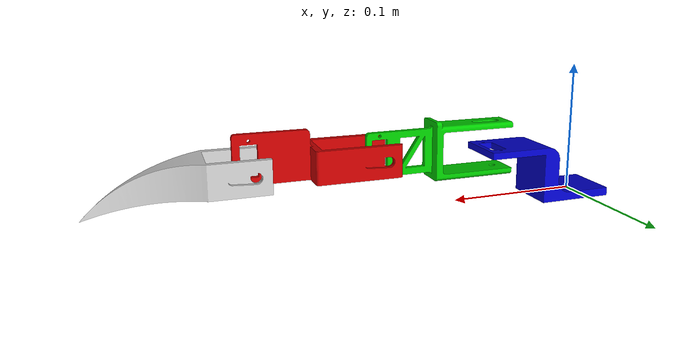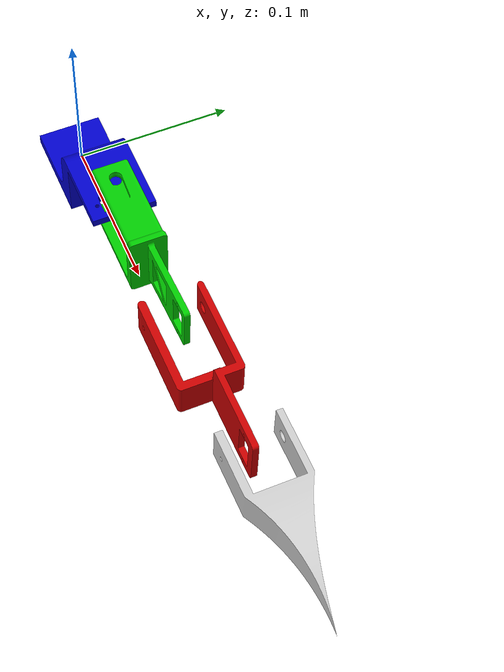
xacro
<?xml version="1.0"?>
<robot name="STL" xmlns:xacro="http://ros.org/wiki.xacro">
  <xacro:property name="width" value="0.5"/>

  <material name="blue">
    <color rgba="0 0 0.8 1"/>
  </material>
  <material name="green">
    <color rgba="0 0.8 0 1"/>
  </material>
  <material name="red">
    <color rgba="0.8 0 0 1"/>
  </material>
  <material name="white">
    <color rgba="0.8 0.8 0.8 1"/>
  </material>

  <xacro:property name="mesh_dir"
      value="package://spider_capstone_description/meshes/Prototype"/>
  <xacro:property name="mesh_scale" value="0.001"/>
  <xacro:property name="offset_scale" value="150"/>

  <link name="base_link">
    <visual>
      <geometry>
        <mesh filename="${mesh_dir}/MockBase.stl" scale="${mesh_scale} ${mesh_scale} ${mesh_scale}"/>
      </geometry>
      <origin xyz="0.08 -0.02 0.04" rpy="${-pi/2} 0 ${pi/2}"/>
      <material name="blue"/>
    </visual>
  </link>

  <link name="Link1">
    <visual>
      <geometry>
        <mesh filename="${mesh_dir}/Link1.stl" scale="${mesh_scale} ${mesh_scale} ${mesh_scale}"/>
      </geometry>
      <origin xyz="-0.011 0.011 -0.02" rpy="${pi/2} 0 0"/>
      <material name="green"/>
    </visual>
  </link>

  <joint name="Joint1" type="fixed">
    <parent link="base_link"/>
    <child link="Link1"/>
    <origin xyz="0.07 0 0.04" rpy="0 0 0"/>
  </joint>

  <link name="Link2">
    <visual>
     <geometry>
       <mesh filename="${mesh_dir}/Link2.stl" scale="${mesh_scale} ${mesh_scale} ${mesh_scale}"/>
     </geometry>
     <origin xyz="-0.011 0.011 -0.02" rpy="${pi/2} 0 0"/>
     <material name="red"/>
    </visual>
  </link>

  <joint name="Joint2" type="fixed">
    <parent link="Link1"/>
    <child link="Link2"/>
    <origin xyz="0.092 0 0" rpy="${-pi/2} 0 0"/>
  </joint>

  <link name="Link3">
    <visual>
      <geometry>
        <mesh filename="${mesh_dir}/Link3.stl" scale="${mesh_scale} ${mesh_scale} ${mesh_scale}"/>
      </geometry>
      <origin xyz="-0.01 0.03 -0.025" rpy="${pi/2} 0 0"/>
      <material name="white"/>
    </visual>
  </link>

  <joint name="Joint3" type="fixed">
    <parent link="Link2"/>
    <child link="Link3"/>
    <origin xyz="0.092 0 0.005" rpy="0 0 0"/>
  </joint>

</robot>
